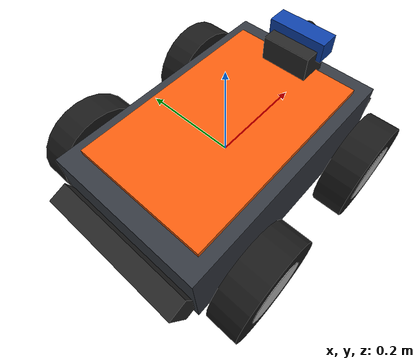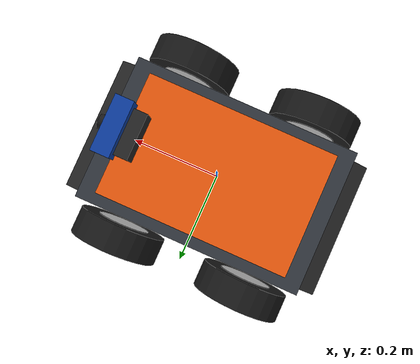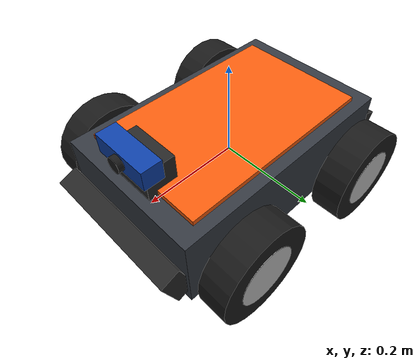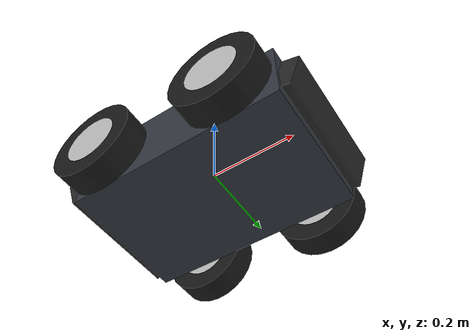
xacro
<?xml version="1.0"?>
<robot name="naviguard" xmlns:xacro="http://www.ros.org/wiki/xacro">

  <!-- ==================== INCLUDES ==================== -->
  <xacro:include filename="materials.xacro"/>
  <xacro:include filename="chassis.xacro"/>
  <xacro:include filename="wheel.xacro"/>
  <xacro:include filename="sensors.xacro"/>
  <xacro:include filename="gazebo_control.xacro"/>

  <!-- ==================== WHEEL INSTANTIATION ==================== -->
  <!-- Wheelbase: 0.30 m (+/- 0.15 m from center) -->
  <!-- Track width: 0.42 m (+/- 0.21 m from center) -->
  <!-- Wheel vertical offset: -0.02 m relative to base_link -->

  <!-- Front Left Wheel -->
  <xacro:naviguard_wheel
    prefix="left_front"
    x_offset="0.15"
    y_offset="0.21"
    z_offset="-0.02"/>

  <!-- Front Right Wheel -->
  <xacro:naviguard_wheel
    prefix="right_front"
    x_offset="0.15"
    y_offset="-0.21"
    z_offset="-0.02"/>

  <!-- Rear Left Wheel -->
  <xacro:naviguard_wheel
    prefix="left_rear"
    x_offset="-0.15"
    y_offset="0.21"
    z_offset="-0.02"/>

  <!-- Rear Right Wheel -->
  <xacro:naviguard_wheel
    prefix="right_rear"
    x_offset="-0.15"
    y_offset="-0.21"
    z_offset="-0.02"/>

</robot>

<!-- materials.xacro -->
<robot xmlns:xacro="http://www.ros.org/wiki/xacro">
  <!-- NAVIGUARD SIH 2026 Color Palette -->
  <material name="chassis_grey">
    <color rgba="0.2 0.22 0.25 1.0"/>
  </material>

  <material name="naviguard_orange">
    <color rgba="0.95 0.36 0.05 1.0"/>
  </material>

  <material name="wheel_rubber_black">
    <color rgba="0.1 0.1 0.1 1.0"/>
  </material>

  <material name="wheel_rim_silver">
    <color rgba="0.75 0.75 0.75 1.0"/>
  </material>

  <material name="sensor_mast_black">
    <color rgba="0.15 0.15 0.15 1.0"/>
  </material>

  <material name="camera_blue">
    <color rgba="0.05 0.25 0.65 1.0"/>
  </material>

  <material name="lens_glass">
    <color rgba="0.1 0.1 0.1 1.0"/>
  </material>

  <material name="imu_gold">
    <color rgba="0.85 0.75 0.2 1.0"/>
  </material>
</robot>

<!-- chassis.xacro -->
<robot xmlns:xacro="http://www.ros.org/wiki/xacro">

  <!-- Chassis dimensions -->
  <xacro:property name="chassis_length" value="0.50"/>
  <xacro:property name="chassis_width" value="0.32"/>
  <xacro:property name="chassis_height" value="0.16"/>
  <xacro:property name="chassis_mass" value="15.0"/>

  <!-- Base link (Root Frame) -->
  <link name="base_link">
    <!-- Main Chassis Inertial -->
    <inertial>
      <origin xyz="0 0 0" rpy="0 0 0"/>
      <mass value="${chassis_mass}"/>
      <inertia
        ixx="${(1.0/12.0) * chassis_mass * (chassis_width*chassis_width + chassis_height*chassis_height)}"
        ixy="0.0"
        ixz="0.0"
        iyy="${(1.0/12.0) * chassis_mass * (chassis_length*chassis_length + chassis_height*chassis_height)}"
        iyz="0.0"
        izz="${(1.0/12.0) * chassis_mass * (chassis_length*chassis_length + chassis_width*chassis_width)}"/>
    </inertial>

    <!-- Main Chassis Collision -->
    <collision name="chassis_collision">
      <origin xyz="0 0 0" rpy="0 0 0"/>
      <geometry>
        <box size="${chassis_length} ${chassis_width} ${chassis_height}"/>
      </geometry>
    </collision>

    <!-- Main Chassis Visual -->
    <visual name="chassis_body">
      <origin xyz="0 0 0" rpy="0 0 0"/>
      <geometry>
        <box size="${chassis_length} ${chassis_width} ${chassis_height}"/>
      </geometry>
      <material name="chassis_grey"/>
    </visual>

    <!-- Top Deck Accent Plate (Visual) -->
    <visual name="top_plate_accent">
      <origin xyz="0 0 ${chassis_height/2 + 0.005}" rpy="0 0 0"/>
      <geometry>
        <box size="${chassis_length * 0.85} ${chassis_width * 0.85} 0.01"/>
      </geometry>
      <material name="naviguard_orange"/>
    </visual>

    <!-- Front Bumper / Skid Guard (Visual) -->
    <visual name="front_bumper">
      <origin xyz="${chassis_length/2 + 0.015} 0 -0.02" rpy="0 0.35 0"/>
      <geometry>
        <box size="0.04 ${chassis_width * 0.95} 0.08"/>
      </geometry>
      <material name="sensor_mast_black"/>
    </visual>

    <!-- Rear Bumper (Visual) -->
    <visual name="rear_bumper">
      <origin xyz="${-chassis_length/2 - 0.015} 0 -0.02" rpy="0 -0.35 0"/>
      <geometry>
        <box size="0.04 ${chassis_width * 0.95} 0.08"/>
      </geometry>
      <material name="sensor_mast_black"/>
    </visual>

    <!-- Sensor Mast / Camera Mount (Visual) -->
    <visual name="sensor_mount">
      <origin xyz="0.20 0 0.11" rpy="0 0 0"/>
      <geometry>
        <box size="0.06 0.10 0.06"/>
      </geometry>
      <material name="sensor_mast_black"/>
    </visual>
  </link>

  <!-- Gazebo material styling for base_link -->
  <gazebo reference="base_link">
    <material>
      <ambient>0.2 0.22 0.25 1.0</ambient>
      <diffuse>0.2 0.22 0.25 1.0</diffuse>
      <specular>0.3 0.3 0.3 1.0</specular>
    </material>
  </gazebo>

  <!-- base_footprint Link (Ground contact projection) -->
  <link name="base_footprint">
    <inertial>
      <origin xyz="0 0 0" rpy="0 0 0"/>
      <mass value="0.001"/>
      <inertia ixx="1e-6" ixy="0.0" ixz="0.0" iyy="1e-6" iyz="0.0" izz="1e-6"/>
    </inertial>
  </link>

  <joint name="base_footprint_joint" type="fixed">
    <parent link="base_link"/>
    <child link="base_footprint"/>
    <origin xyz="0 0 -0.12" rpy="0 0 0"/>
  </joint>

  <gazebo reference="base_footprint_joint">
    <preserveFixedJoint>true</preserveFixedJoint>
  </gazebo>

</robot>

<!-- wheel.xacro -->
<robot xmlns:xacro="http://www.ros.org/wiki/xacro">

  <!-- Wheel properties -->
  <xacro:property name="wheel_radius" value="0.10"/>
  <xacro:property name="wheel_width" value="0.06"/>
  <xacro:property name="wheel_mass" value="1.5"/>

  <!-- Wheel macro -->
  <xacro:macro name="naviguard_wheel" params="prefix x_offset y_offset z_offset:=-0.02">
    <link name="${prefix}_wheel">
      <inertial>
        <origin xyz="0 0 0" rpy="0 0 0"/>
        <mass value="${wheel_mass}"/>
        <inertia
          ixx="${(1.0/12.0) * wheel_mass * (3*wheel_radius*wheel_radius + wheel_width*wheel_width)}"
          ixy="0.0"
          ixz="0.0"
          iyy="${0.5 * wheel_mass * wheel_radius * wheel_radius}"
          iyz="0.0"
          izz="${(1.0/12.0) * wheel_mass * (3*wheel_radius*wheel_radius + wheel_width*wheel_width)}"/>
      </inertial>

      <!-- Collision cylinder -->
      <collision name="${prefix}_wheel_collision">
        <origin xyz="0 0 0" rpy="${pi/2} 0 0"/>
        <geometry>
          <cylinder radius="${wheel_radius}" length="${wheel_width}"/>
        </geometry>
      </collision>

      <!-- Visual tire -->
      <visual name="${prefix}_wheel_tire">
        <origin xyz="0 0 0" rpy="${pi/2} 0 0"/>
        <geometry>
          <cylinder radius="${wheel_radius}" length="${wheel_width}"/>
        </geometry>
        <material name="wheel_rubber_black"/>
      </visual>

      <!-- Visual rim / hub -->
      <visual name="${prefix}_wheel_rim">
        <origin xyz="0 0 0" rpy="${pi/2} 0 0"/>
        <geometry>
          <cylinder radius="${wheel_radius * 0.6}" length="${wheel_width + 0.002}"/>
        </geometry>
        <material name="wheel_rim_silver"/>
      </visual>
    </link>

    <!-- Revolute / continuous joint connecting wheel to base_link -->
    <joint name="${prefix}_wheel_joint" type="continuous">
      <parent link="base_link"/>
      <child link="${prefix}_wheel"/>
      <origin xyz="${x_offset} ${y_offset} ${z_offset}" rpy="0 0 0"/>
      <axis xyz="0 1 0"/>
      <dynamics damping="0.1" friction="0.05"/>
    </joint>

    <!-- Gazebo physics & friction settings -->
    <gazebo reference="${prefix}_wheel">
      <mu1>1.0</mu1>
      <mu2>0.3</mu2>
      <kp>1000000.0</kp>
      <kd>10.0</kd>
      <material>
        <ambient>0.1 0.1 0.1 1.0</ambient>
        <diffuse>0.1 0.1 0.1 1.0</diffuse>
        <specular>0.2 0.2 0.2 1.0</specular>
      </material>
    </gazebo>
  </xacro:macro>

</robot>

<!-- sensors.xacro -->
<robot xmlns:xacro="http://www.ros.org/wiki/xacro">

  <!-- ==================== RGB CAMERA SENSOR ==================== -->
  <xacro:property name="camera_mass" value="0.2"/>

  <!-- camera_link (forward-facing on chassis mast) -->
  <link name="camera_link">
    <inertial>
      <origin xyz="0 0 0" rpy="0 0 0"/>
      <mass value="${camera_mass}"/>
      <inertia
        ixx="${(1.0/12.0) * camera_mass * (0.12*0.12 + 0.04*0.04)}"
        ixy="0.0"
        ixz="0.0"
        iyy="${(1.0/12.0) * camera_mass * (0.04*0.04 + 0.04*0.04)}"
        iyz="0.0"
        izz="${(1.0/12.0) * camera_mass * (0.04*0.04 + 0.12*0.12)}"/>
    </inertial>

    <collision name="camera_collision">
      <origin xyz="0 0 0" rpy="0 0 0"/>
      <geometry>
        <box size="0.04 0.12 0.04"/>
      </geometry>
    </collision>

    <!-- Camera Body -->
    <visual name="camera_body">
      <origin xyz="0 0 0" rpy="0 0 0"/>
      <geometry>
        <box size="0.04 0.12 0.04"/>
      </geometry>
      <material name="camera_blue"/>
    </visual>

    <!-- Primary Lens (Visual) -->
    <visual name="camera_lens">
      <origin xyz="0.025 0 0" rpy="0 ${pi/2} 0"/>
      <geometry>
        <cylinder radius="0.015" length="0.012"/>
      </geometry>
      <material name="lens_glass"/>
    </visual>
  </link>

  <joint name="camera_joint" type="fixed">
    <parent link="base_link"/>
    <child link="camera_link"/>
    <origin xyz="0.22 0.0 0.14" rpy="0 0 0"/>
  </joint>

  <!-- Gazebo Camera Sensor Plugin -->
  <gazebo reference="camera_link">
    <material>
      <ambient>0.05 0.25 0.65 1.0</ambient>
      <diffuse>0.05 0.25 0.65 1.0</diffuse>
      <specular>0.5 0.5 0.5 1.0</specular>
    </material>
    <sensor name="naviguard_camera" type="camera">
      <camera>
        <horizontal_fov>1.3962634</horizontal_fov>
        <image>
          <width>640</width>
          <height>480</height>
          <format>R8G8B8</format>
        </image>
        <clip>
          <near>0.05</near>
          <far>100.0</far>
        </clip>
      </camera>
      <always_on>1</always_on>
      <update_rate>30</update_rate>
      <visualize>true</visualize>
      <topic>/camera/image_raw</topic>
    </sensor>
  </gazebo>

  <gazebo reference="camera_joint">
    <preserveFixedJoint>true</preserveFixedJoint>
  </gazebo>

  <!-- Standard ROS camera optical frame (Z-forward, X-right, Y-down) -->
  <link name="camera_optical_link">
    <inertial>
      <origin xyz="0 0 0" rpy="0 0 0"/>
      <mass value="0.001"/>
      <inertia ixx="1e-6" ixy="0.0" ixz="0.0" iyy="1e-6" iyz="0.0" izz="1e-6"/>
    </inertial>
  </link>

  <joint name="camera_optical_joint" type="fixed">
    <parent link="camera_link"/>
    <child link="camera_optical_link"/>
    <origin xyz="0 0 0" rpy="${-pi/2} 0 ${-pi/2}"/>
  </joint>

  <gazebo reference="camera_optical_joint">
    <preserveFixedJoint>true</preserveFixedJoint>
  </gazebo>

  <!-- ==================== IMU SENSOR ==================== -->
  <xacro:property name="imu_mass" value="0.05"/>

  <!-- imu_link (near center of gravity inside chassis) -->
  <link name="imu_link">
    <inertial>
      <origin xyz="0 0 0" rpy="0 0 0"/>
      <mass value="${imu_mass}"/>
      <inertia
        ixx="1e-5" ixy="0.0" ixz="0.0"
        iyy="1e-5" iyz="0.0"
        izz="1e-5"/>
    </inertial>

    <collision name="imu_collision">
      <origin xyz="0 0 0" rpy="0 0 0"/>
      <geometry>
        <box size="0.03 0.03 0.01"/>
      </geometry>
    </collision>

    <visual name="imu_visual">
      <origin xyz="0 0 0" rpy="0 0 0"/>
      <geometry>
        <box size="0.03 0.03 0.01"/>
      </geometry>
      <material name="imu_gold"/>
    </visual>
  </link>

  <joint name="imu_joint" type="fixed">
    <parent link="base_link"/>
    <child link="imu_link"/>
    <origin xyz="0.0 0.0 0.02" rpy="0 0 0"/>
  </joint>

  <!-- Gazebo IMU Sensor Plugin -->
  <gazebo reference="imu_link">
    <material>
      <ambient>0.85 0.75 0.2 1.0</ambient>
      <diffuse>0.85 0.75 0.2 1.0</diffuse>
      <specular>0.4 0.4 0.4 1.0</specular>
    </material>
    <sensor name="naviguard_imu" type="imu">
      <always_on>1</always_on>
      <update_rate>100</update_rate>
      <visualize>true</visualize>
      <topic>/imu</topic>
      <imu>
        <angular_velocity>
          <x><noise type="gaussian"><mean>0.0</mean><stddev>2e-4</stddev></noise></x>
          <y><noise type="gaussian"><mean>0.0</mean><stddev>2e-4</stddev></noise></y>
          <z><noise type="gaussian"><mean>0.0</mean><stddev>2e-4</stddev></noise></z>
        </angular_velocity>
        <linear_acceleration>
          <x><noise type="gaussian"><mean>0.0</mean><stddev>1.7e-2</stddev></noise></x>
          <y><noise type="gaussian"><mean>0.0</mean><stddev>1.7e-2</stddev></noise></y>
          <z><noise type="gaussian"><mean>0.0</mean><stddev>1.7e-2</stddev></noise></z>
        </linear_acceleration>
      </imu>
    </sensor>
  </gazebo>

  <gazebo reference="imu_joint">
    <preserveFixedJoint>true</preserveFixedJoint>
  </gazebo>

  <!-- ==================== CHASE CAMERA SENSOR ==================== -->
  <link name="chase_camera_link">
    <inertial>
      <origin xyz="0 0 0" rpy="0 0 0"/>
      <mass value="0.001"/>
      <inertia ixx="1e-6" ixy="0.0" ixz="0.0" iyy="1e-6" iyz="0.0" izz="1e-6"/>
    </inertial>
  </link>

  <joint name="chase_camera_joint" type="fixed">
    <parent link="base_link"/>
    <child link="chase_camera_link"/>
    <origin xyz="-2.2 0.0 1.4" rpy="0 0.35 0"/>
  </joint>

  <gazebo reference="chase_camera_joint">
    <preserveFixedJoint>true</preserveFixedJoint>
  </gazebo>

  <gazebo reference="chase_camera_link">
    <sensor name="naviguard_chase_camera" type="camera">
      <camera>
        <horizontal_fov>1.3962634</horizontal_fov>
        <image>
          <width>640</width>
          <height>480</height>
          <format>R8G8B8</format>
        </image>
        <clip>
          <near>0.05</near>
          <far>100.0</far>
        </clip>
      </camera>
      <always_on>1</always_on>
      <update_rate>15</update_rate>
      <visualize>false</visualize>
      <topic>/camera/chase_image</topic>
    </sensor>
  </gazebo>

</robot>
